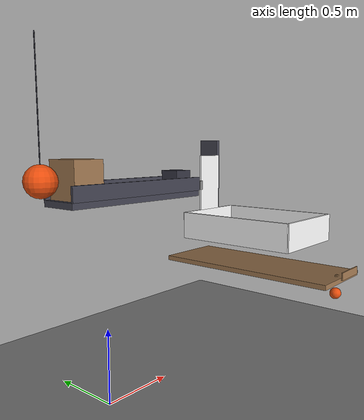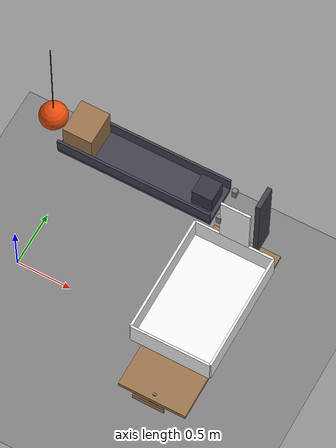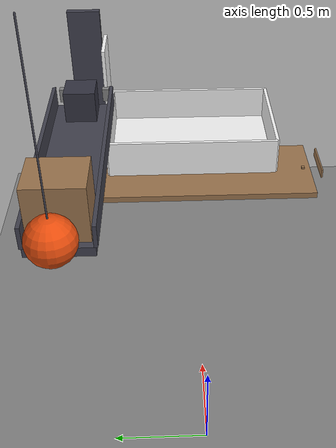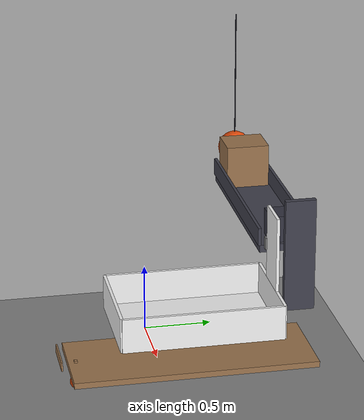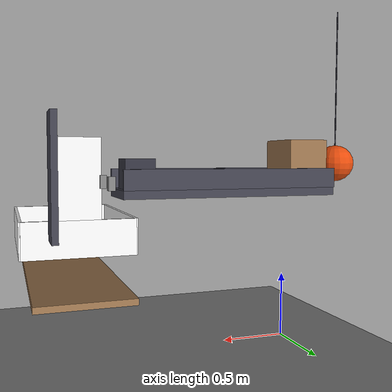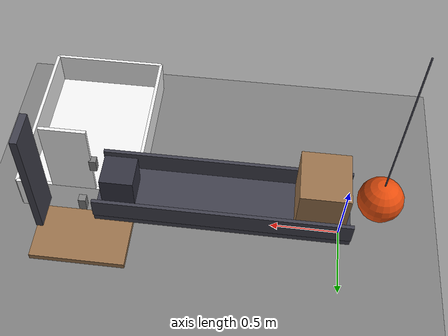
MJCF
<mujoco model="pendulum_cart_and_seesaw_catcher">
  <compiler angle="radian"/>
  <option timestep="0.002"/>
  <worldbody>
    <geom name="floor" type="plane" size="6 6 0.1" friction="0.8 0.005 0.002"/>
    <body name="pendulum" pos="0 0.68 2.4">
      <joint name="pendulum_hinge" type="hinge" pos="0 0 0" axis="0 1 0" damping="0.002"/>
      <geom name="pendulum" type="sphere" pos="0 0 -1" size="0.12" mass="3" solref="0.01 1" rgba="0.9 0.3 0.05 1"/>
      <geom name="pendulum rod" type="capsule" size="0.004" fromto="0 0 0 0 0 -0.88" mass="0.02" rgba="0.25 0.25 0.3 1"/>
    </body>
    <body name="runway">
      <geom name="runway" type="box" pos="0.815 0.68 1.225" size="0.685 0.17 0.025" friction="0.025 0.005 0.0001" rgba="0.25 0.25 0.3 1"/>
    </body>
    <body name="cart" pos="0.3 0.68 1.4">
      <freejoint/>
      <geom name="cart" type="box" pos="0 0 0" size="0.13 0.15 0.15" mass="1.2" friction="0.03 0.01 0.002" solref="0.01 1" rgba="0.6 0.45 0.3 1"/>
    </body>
    <body name="left guide">
      <geom name="left guide" type="box" pos="0.815 0.85 1.31" size="0.685 0.01 0.06" friction="0.02 0.005 0.0001" rgba="0.25 0.25 0.3 1"/>
    </body>
    <body name="right guide">
      <geom name="right guide" type="box" pos="0.815 0.51 1.31" size="0.685 0.01 0.06" friction="0.02 0.005 0.0001" rgba="0.25 0.25 0.3 1"/>
    </body>
    <body name="left cart stop">
      <geom name="left cart stop" type="box" pos="1.56 0.81 1.29" size="0.02 0.02 0.04" solref="0.01 1"/>
    </body>
    <body name="right cart stop">
      <geom name="right cart stop" type="box" pos="1.56 0.55 1.29" size="0.02 0.02 0.04" solref="0.01 1"/>
    </body>
    <body name="weight" pos="1.38 0.68 1.34">
      <freejoint/>
      <geom name="weight" type="box" pos="0 0 0" size="0.09 0.09 0.09" mass="3" friction="0.03 0.02 0.005" solref="0.01 1" rgba="0.2 0.2 0.25 1"/>
    </body>
    <body name="weight drop wall">
      <geom name="weight drop wall" type="box" pos="1.87 0.68 1.325" size="0.02 0.1 0.375" friction="0.02 0.005 0.0001" solref="0.01 1" rgba="0.25 0.25 0.3 1"/>
    </body>
    <body name="seesaw" pos="1.7 0 0.6">
      <joint name="seesaw_hinge" type="hinge" pos="0 0 0" axis="1 0 0" limited="true" range="-0.314159 0.261799" damping="0.01"/>
      <geom name="seesaw" type="box" pos="0 0 0" size="0.3 0.8 0.02" mass="0.25" friction="1 0.02 0.01" solref="0.01 1" rgba="0.6 0.45 0.3 1"/>
      <geom name="launch tray" type="box" pos="0 -0.75 0.026" size="0.014 0.01 0.006" mass="0.025" friction="1 0.02 0.05" solref="0.01 1" rgba="0.6 0.45 0.3 1"/>
      <geom name="launch back" type="box" pos="0 -0.855 0.062" size="0.14 0.005 0.03" mass="0.01" friction="0.5 0.005 0.0001" solref="0.01 1" rgba="0.6 0.45 0.3 1"/>
    </body>
    <body name="ball" pos="1.7 -0.744374 0.480267">
      <freejoint/>
      <geom name="ball" type="sphere" pos="0 0 0" size="0.045" mass="0.06" condim="6" friction="0.8 0.02 0.05" solref="0.01 1" rgba="0.9 0.3 0.05 1"/>
    </body>
    <body name="cup">
      <geom name="cup_base" type="box" pos="1.7 0.025 0.84" size="0.35 0.525 0.01" friction="1 0.05 0.05" solref="0.01 1" rgba="0.95 0.95 0.95 1"/>
      <geom name="cup_near_wall" type="box" pos="1.35 0.025 0.945" size="0.01 0.525 0.115" friction="1 0.05 0.05" solref="0.01 1" rgba="0.95 0.95 0.95 1"/>
      <geom name="cup_far_wall" type="box" pos="2.05 0.025 0.945" size="0.01 0.525 0.115" friction="1 0.05 0.05" solref="0.01 1" rgba="0.95 0.95 0.95 1"/>
      <geom name="cup_left_wall" type="box" pos="1.7 0.55 0.945" size="0.35 0.01 0.115" friction="1 0.05 0.05" solref="0.01 1" rgba="0.95 0.95 0.95 1"/>
      <geom name="cup_right_wall" type="box" pos="1.7 -0.5 0.945" size="0.35 0.01 0.115" friction="1 0.05 0.05" solref="0.01 1" rgba="0.95 0.95 0.95 1"/>
    </body>
    <body name="cup catch wall">
      <geom name="cup catch wall" type="box" pos="1.7 0.55 1.31" size="0.13 0.01 0.25" friction="1 0.05 0.05" solref="0.01 1" rgba="0.95 0.95 0.95 1"/>
    </body>
  </worldbody>
  <keyframe>
    <key name="start" qpos="1.15928 0.3 0.68 1.4 1 0 0 0 1.38 0.68 1.34 1 0 0 0 0.261799 1.7 -0.744374 0.480267 1 0 0 0" qvel="0 0 0 0 0 0 0 0 0 0 0 0 0 0 0 0 0 0 0 0"/>
  </keyframe>
</mujoco>
